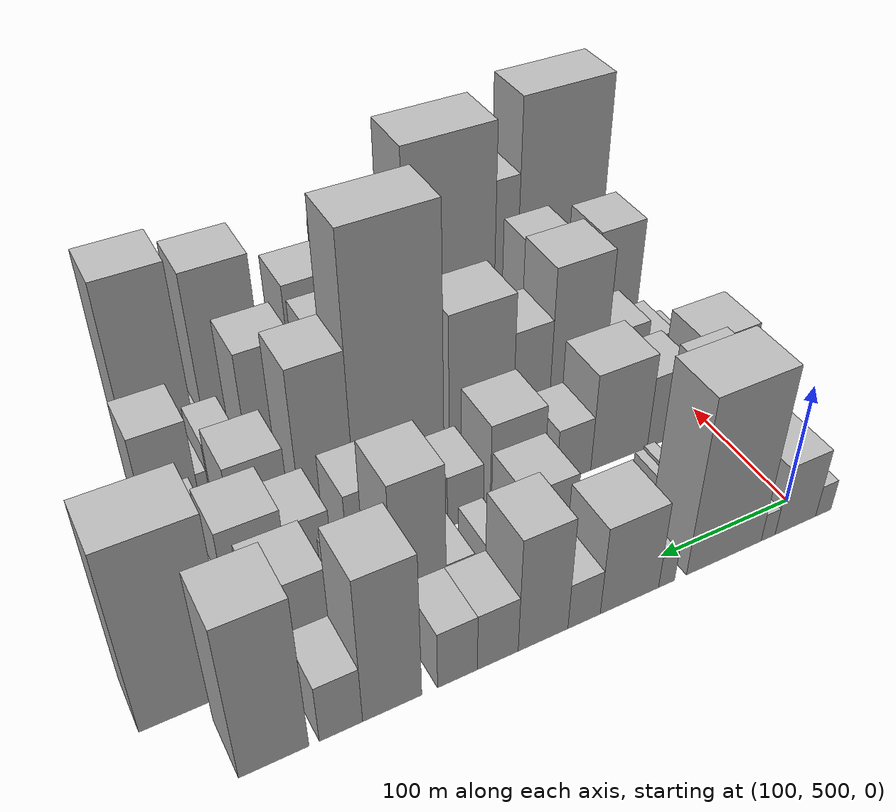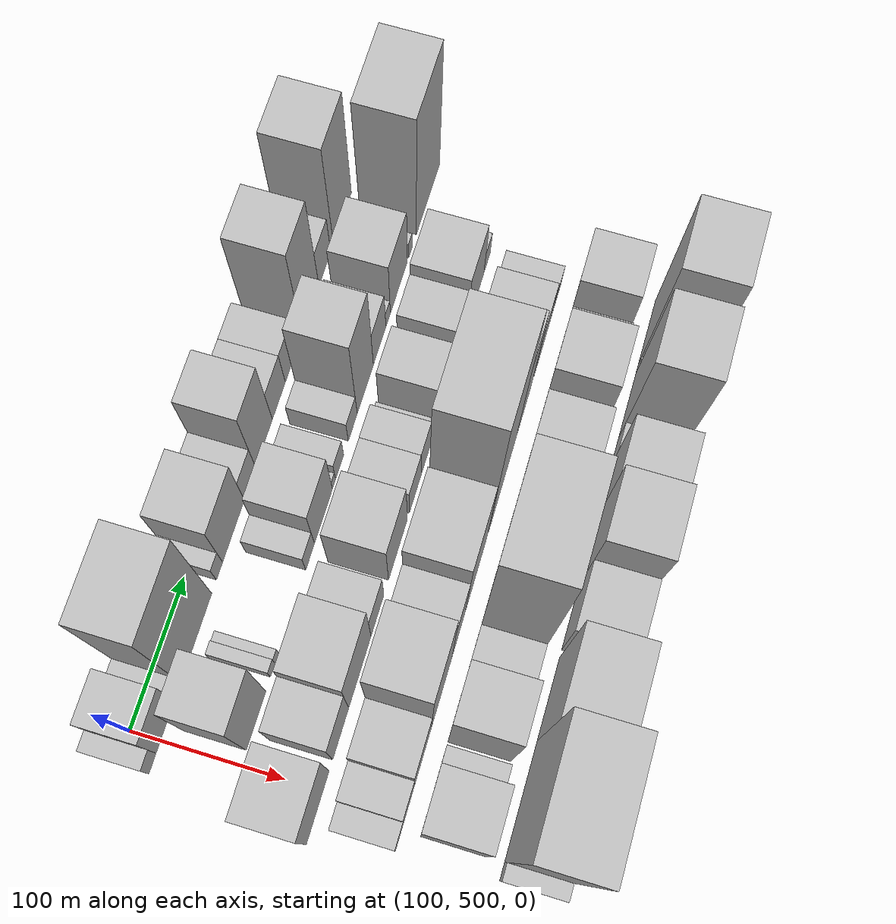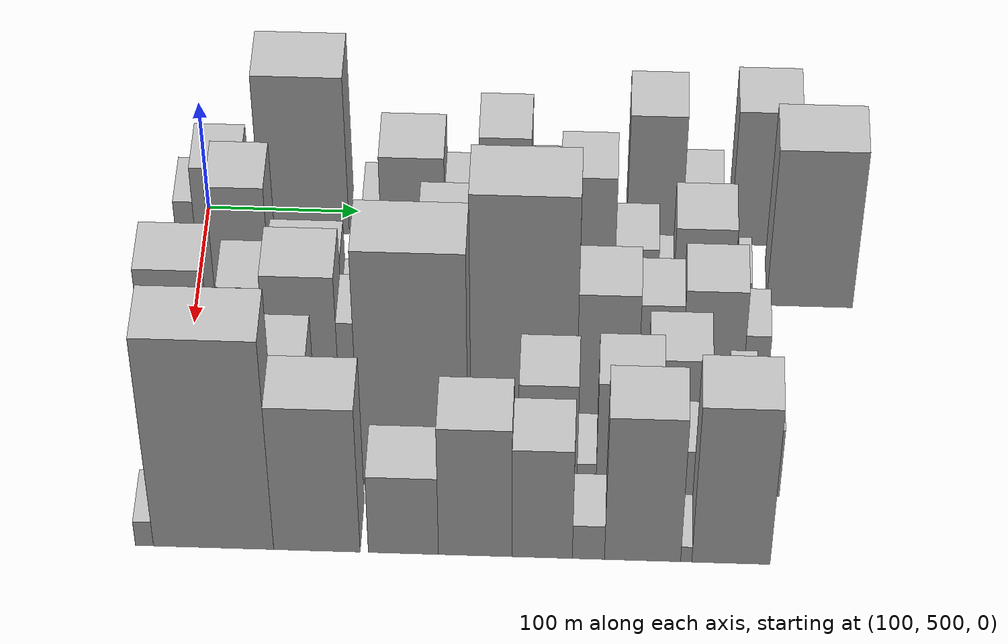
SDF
<sdf version="1.6">
 <world name="default">
  <model name="building_38">
   <static>1</static>
   <pose>100.0000 485.9886 0 0.000000 0.000000 0.000000</pose>
   <link name="link">
    <pose>0 0 13.50 0 0 0</pose>
    <collision name="collision"><geometry><box><size>40.0000 12.8164 27.0000</size></box></geometry></collision>
    <visual name="visual">
     <cast_shadows>0</cast_shadows>
     <geometry><box><size>40.0000 12.8164 27.0000</size></box></geometry>
     <material>
      <script>
       <uri>model://HANNAS_wall/materials/scripts</uri>
       <uri>model://HANNAS_wall/materials/textures</uri>
       <name>vrc/HANNAS_wall</name>
      </script>
     </material>
    </visual>
   </link>
  </model>
  <model name="building_39">
   <static>1</static>
   <pose>100.0000 509.0703 0 0.000000 0.000000 0.000000</pose>
   <link name="link">
    <pose>0 0 30.00 0 0 0</pose>
    <collision name="collision"><geometry><box><size>40.0000 33.3469 60.0000</size></box></geometry></collision>
    <visual name="visual">
     <cast_shadows>0</cast_shadows>
     <geometry><box><size>40.0000 33.3469 60.0000</size></box></geometry>
     <material>
      <script>
       <uri>model://HANNAS_wall/materials/scripts</uri>
       <uri>model://HANNAS_wall/materials/textures</uri>
       <name>vrc/HANNAS_wall</name>
      </script>
     </material>
    </visual>
   </link>
  </model>
  <model name="building_40">
   <static>1</static>
   <pose>100.0000 531.3404 0 0.000000 0.000000 0.000000</pose>
   <link name="link">
    <pose>0 0 12.00 0 0 0</pose>
    <collision name="collision"><geometry><box><size>40.0000 11.1934 24.0000</size></box></geometry></collision>
    <visual name="visual">
     <cast_shadows>0</cast_shadows>
     <geometry><box><size>40.0000 11.1934 24.0000</size></box></geometry>
     <material>
      <script>
       <uri>model://HANNAS_wall/materials/scripts</uri>
       <uri>model://HANNAS_wall/materials/textures</uri>
       <name>vrc/HANNAS_wall</name>
      </script>
     </material>
    </visual>
   </link>
  </model>
  <model name="building_41">
   <static>1</static>
   <pose>100.0000 566.0757 0 0.000000 0.000000 0.000000</pose>
   <link name="link">
    <pose>0 0 73.50 0 0 0</pose>
    <collision name="collision"><geometry><box><size>40.0000 58.2772 147.0000</size></box></geometry></collision>
    <visual name="visual">
     <cast_shadows>0</cast_shadows>
     <geometry><box><size>40.0000 58.2772 147.0000</size></box></geometry>
     <material>
      <script>
       <uri>model://HANNAS_wall/materials/scripts</uri>
       <uri>model://HANNAS_wall/materials/textures</uri>
       <name>vrc/HANNAS_wall</name>
      </script>
     </material>
    </visual>
   </link>
  </model>
  <model name="building_42">
   <static>1</static>
   <pose>100.0000 610.1692 0 0.000000 0.000000 0.000000</pose>
   <link name="link">
    <pose>0 0 13.50 0 0 0</pose>
    <collision name="collision"><geometry><box><size>40.0000 11.9098 27.0000</size></box></geometry></collision>
    <visual name="visual">
     <cast_shadows>0</cast_shadows>
     <geometry><box><size>40.0000 11.9098 27.0000</size></box></geometry>
     <material>
      <script>
       <uri>model://HANNAS_wall/materials/scripts</uri>
       <uri>model://HANNAS_wall/materials/textures</uri>
       <name>vrc/HANNAS_wall</name>
      </script>
     </material>
    </visual>
   </link>
  </model>
  <model name="building_43">
   <static>1</static>
   <pose>100.0000 637.3659 0 0.000000 0.000000 0.000000</pose>
   <link name="link">
    <pose>0 0 37.50 0 0 0</pose>
    <collision name="collision"><geometry><box><size>40.0000 42.4835 75.0000</size></box></geometry></collision>
    <visual name="visual">
     <cast_shadows>0</cast_shadows>
     <geometry><box><size>40.0000 42.4835 75.0000</size></box></geometry>
     <material>
      <script>
       <uri>model://HANNAS_wall/materials/scripts</uri>
       <uri>model://HANNAS_wall/materials/textures</uri>
       <name>vrc/HANNAS_wall</name>
      </script>
     </material>
    </visual>
   </link>
  </model>
  <model name="building_44">
   <static>1</static>
   <pose>100.0000 669.9970 0 0.000000 0.000000 0.000000</pose>
   <link name="link">
    <pose>0 0 19.50 0 0 0</pose>
    <collision name="collision"><geometry><box><size>40.0000 22.7788 39.0000</size></box></geometry></collision>
    <visual name="visual">
     <cast_shadows>0</cast_shadows>
     <geometry><box><size>40.0000 22.7788 39.0000</size></box></geometry>
     <material>
      <script>
       <uri>model://HANNAS_wall/materials/scripts</uri>
       <uri>model://HANNAS_wall/materials/textures</uri>
       <name>vrc/HANNAS_wall</name>
      </script>
     </material>
    </visual>
   </link>
  </model>
  <model name="building_45">
   <static>1</static>
   <pose>100.0000 698.4218 0 0.000000 0.000000 0.000000</pose>
   <link name="link">
    <pose>0 0 48.00 0 0 0</pose>
    <collision name="collision"><geometry><box><size>40.0000 34.0707 96.0000</size></box></geometry></collision>
    <visual name="visual">
     <cast_shadows>0</cast_shadows>
     <geometry><box><size>40.0000 34.0707 96.0000</size></box></geometry>
     <material>
      <script>
       <uri>model://HANNAS_wall/materials/scripts</uri>
       <uri>model://HANNAS_wall/materials/textures</uri>
       <name>vrc/HANNAS_wall</name>
      </script>
     </material>
    </visual>
   </link>
  </model>
  <model name="building_46">
   <static>1</static>
   <pose>100.0000 729.0111 0 0.000000 0.000000 0.000000</pose>
   <link name="link">
    <pose>0 0 24.00 0 0 0</pose>
    <collision name="collision"><geometry><box><size>40.0000 27.1078 48.0000</size></box></geometry></collision>
    <visual name="visual">
     <cast_shadows>0</cast_shadows>
     <geometry><box><size>40.0000 27.1078 48.0000</size></box></geometry>
     <material>
      <script>
       <uri>model://HANNAS_wall/materials/scripts</uri>
       <uri>model://HANNAS_wall/materials/textures</uri>
       <name>vrc/HANNAS_wall</name>
      </script>
     </material>
    </visual>
   </link>
  </model>
  <model name="building_47">
   <static>1</static>
   <pose>100.0000 755.4029 0 0.000000 0.000000 0.000000</pose>
   <link name="link">
    <pose>0 0 24.00 0 0 0</pose>
    <collision name="collision"><geometry><box><size>40.0000 25.6758 48.0000</size></box></geometry></collision>
    <visual name="visual">
     <cast_shadows>0</cast_shadows>
     <geometry><box><size>40.0000 25.6758 48.0000</size></box></geometry>
     <material>
      <script>
       <uri>model://HANNAS_wall/materials/scripts</uri>
       <uri>model://HANNAS_wall/materials/textures</uri>
       <name>vrc/HANNAS_wall</name>
      </script>
     </material>
    </visual>
   </link>
  </model>
  <model name="building_48">
   <static>1</static>
   <pose>100.0000 796.5270 0 0.000000 0.000000 0.000000</pose>
   <link name="link">
    <pose>0 0 60.00 0 0 0</pose>
    <collision name="collision"><geometry><box><size>40.0000 36.5725 120.0000</size></box></geometry></collision>
    <visual name="visual">
     <cast_shadows>0</cast_shadows>
     <geometry><box><size>40.0000 36.5725 120.0000</size></box></geometry>
     <material>
      <script>
       <uri>model://HANNAS_wall/materials/scripts</uri>
       <uri>model://HANNAS_wall/materials/textures</uri>
       <name>vrc/HANNAS_wall</name>
      </script>
     </material>
    </visual>
   </link>
  </model>
  <model name="building_49">
   <static>1</static>
   <pose>100.0000 827.8060 0 0.000000 0.000000 0.000000</pose>
   <link name="link">
    <pose>0 0 24.00 0 0 0</pose>
    <collision name="collision"><geometry><box><size>40.0000 25.9855 48.0000</size></box></geometry></collision>
    <visual name="visual">
     <cast_shadows>0</cast_shadows>
     <geometry><box><size>40.0000 25.9855 48.0000</size></box></geometry>
     <material>
      <script>
       <uri>model://HANNAS_wall/materials/scripts</uri>
       <uri>model://HANNAS_wall/materials/textures</uri>
       <name>vrc/HANNAS_wall</name>
      </script>
     </material>
    </visual>
   </link>
  </model>
  <model name="building_50">
   <static>1</static>
   <pose>100.0000 867.0473 0 0.000000 0.000000 0.000000</pose>
   <link name="link">
    <pose>0 0 63.00 0 0 0</pose>
    <collision name="collision"><geometry><box><size>40.0000 40.4972 126.0000</size></box></geometry></collision>
    <visual name="visual">
     <cast_shadows>0</cast_shadows>
     <geometry><box><size>40.0000 40.4972 126.0000</size></box></geometry>
     <material>
      <script>
       <uri>model://HANNAS_wall/materials/scripts</uri>
       <uri>model://HANNAS_wall/materials/textures</uri>
       <name>vrc/HANNAS_wall</name>
      </script>
     </material>
    </visual>
   </link>
  </model>
  <model name="building_83">
   <static>1</static>
   <pose>152.0000 528.4783 0 0.000000 0.000000 0.000000</pose>
   <link name="link">
    <pose>0 0 49.50 0 0 0</pose>
    <collision name="collision"><geometry><box><size>40.0000 37.2835 99.0000</size></box></geometry></collision>
    <visual name="visual">
     <cast_shadows>0</cast_shadows>
     <geometry><box><size>40.0000 37.2835 99.0000</size></box></geometry>
     <material>
      <script>
       <uri>model://HANNAS_wall/materials/scripts</uri>
       <uri>model://HANNAS_wall/materials/textures</uri>
       <name>vrc/HANNAS_wall</name>
      </script>
     </material>
    </visual>
   </link>
  </model>
  <model name="building_84">
   <static>1</static>
   <pose>152.0000 560.4969 0 0.000000 0.000000 0.000000</pose>
   <link name="link">
    <pose>0 0 9.00 0 0 0</pose>
    <collision name="collision"><geometry><box><size>40.0000 8.7536 18.0000</size></box></geometry></collision>
    <visual name="visual">
     <cast_shadows>0</cast_shadows>
     <geometry><box><size>40.0000 8.7536 18.0000</size></box></geometry>
     <material>
      <script>
       <uri>model://HANNAS_wall/materials/scripts</uri>
       <uri>model://HANNAS_wall/materials/textures</uri>
       <name>vrc/HANNAS_wall</name>
      </script>
     </material>
    </visual>
   </link>
  </model>
  <model name="building_85">
   <static>1</static>
   <pose>152.0000 568.3085 0 0.000000 0.000000 0.000000</pose>
   <link name="link">
    <pose>0 0 7.50 0 0 0</pose>
    <collision name="collision"><geometry><box><size>40.0000 6.8694 15.0000</size></box></geometry></collision>
    <visual name="visual">
     <cast_shadows>0</cast_shadows>
     <geometry><box><size>40.0000 6.8694 15.0000</size></box></geometry>
     <material>
      <script>
       <uri>model://HANNAS_wall/materials/scripts</uri>
       <uri>model://HANNAS_wall/materials/textures</uri>
       <name>vrc/HANNAS_wall</name>
      </script>
     </material>
    </visual>
   </link>
  </model>
  <model name="building_86">
   <static>1</static>
   <pose>152.0000 635.3804 0 0.000000 0.000000 0.000000</pose>
   <link name="link">
    <pose>0 0 15.00 0 0 0</pose>
    <collision name="collision"><geometry><box><size>40.0000 17.7581 30.0000</size></box></geometry></collision>
    <visual name="visual">
     <cast_shadows>0</cast_shadows>
     <geometry><box><size>40.0000 17.7581 30.0000</size></box></geometry>
     <material>
      <script>
       <uri>model://HANNAS_wall/materials/scripts</uri>
       <uri>model://HANNAS_wall/materials/textures</uri>
       <name>vrc/HANNAS_wall</name>
      </script>
     </material>
    </visual>
   </link>
  </model>
  <model name="building_87">
   <static>1</static>
   <pose>152.0000 663.0353 0 0.000000 0.000000 0.000000</pose>
   <link name="link">
    <pose>0 0 33.00 0 0 0</pose>
    <collision name="collision"><geometry><box><size>40.0000 37.5518 66.0000</size></box></geometry></collision>
    <visual name="visual">
     <cast_shadows>0</cast_shadows>
     <geometry><box><size>40.0000 37.5518 66.0000</size></box></geometry>
     <material>
      <script>
       <uri>model://HANNAS_wall/materials/scripts</uri>
       <uri>model://HANNAS_wall/materials/textures</uri>
       <name>vrc/HANNAS_wall</name>
      </script>
     </material>
    </visual>
   </link>
  </model>
  <model name="building_88">
   <static>1</static>
   <pose>152.0000 685.1945 0 0.000000 0.000000 0.000000</pose>
   <link name="link">
    <pose>0 0 7.50 0 0 0</pose>
    <collision name="collision"><geometry><box><size>40.0000 6.7666 15.0000</size></box></geometry></collision>
    <visual name="visual">
     <cast_shadows>0</cast_shadows>
     <geometry><box><size>40.0000 6.7666 15.0000</size></box></geometry>
     <material>
      <script>
       <uri>model://HANNAS_wall/materials/scripts</uri>
       <uri>model://HANNAS_wall/materials/textures</uri>
       <name>vrc/HANNAS_wall</name>
      </script>
     </material>
    </visual>
   </link>
  </model>
  <model name="building_89">
   <static>1</static>
   <pose>152.0000 697.1945 0 0.000000 0.000000 0.000000</pose>
   <link name="link">
    <pose>0 0 15.00 0 0 0</pose>
    <collision name="collision"><geometry><box><size>40.0000 17.2334 30.0000</size></box></geometry></collision>
    <visual name="visual">
     <cast_shadows>0</cast_shadows>
     <geometry><box><size>40.0000 17.2334 30.0000</size></box></geometry>
     <material>
      <script>
       <uri>model://HANNAS_wall/materials/scripts</uri>
       <uri>model://HANNAS_wall/materials/textures</uri>
       <name>vrc/HANNAS_wall</name>
      </script>
     </material>
    </visual>
   </link>
  </model>
  <model name="building_90">
   <static>1</static>
   <pose>152.0000 725.5152 0 0.000000 0.000000 0.000000</pose>
   <link name="link">
    <pose>0 0 16.50 0 0 0</pose>
    <collision name="collision"><geometry><box><size>40.0000 19.4080 33.0000</size></box></geometry></collision>
    <visual name="visual">
     <cast_shadows>0</cast_shadows>
     <geometry><box><size>40.0000 19.4080 33.0000</size></box></geometry>
     <material>
      <script>
       <uri>model://HANNAS_wall/materials/scripts</uri>
       <uri>model://HANNAS_wall/materials/textures</uri>
       <name>vrc/HANNAS_wall</name>
      </script>
     </material>
    </visual>
   </link>
  </model>
  <model name="building_91">
   <static>1</static>
   <pose>152.0000 753.0220 0 0.000000 0.000000 0.000000</pose>
   <link name="link">
    <pose>0 0 58.50 0 0 0</pose>
    <collision name="collision"><geometry><box><size>40.0000 35.6057 117.0000</size></box></geometry></collision>
    <visual name="visual">
     <cast_shadows>0</cast_shadows>
     <geometry><box><size>40.0000 35.6057 117.0000</size></box></geometry>
     <material>
      <script>
       <uri>model://HANNAS_wall/materials/scripts</uri>
       <uri>model://HANNAS_wall/materials/textures</uri>
       <name>vrc/HANNAS_wall</name>
      </script>
     </material>
    </visual>
   </link>
  </model>
  <model name="building_92">
   <static>1</static>
   <pose>152.0000 784.8673 0 0.000000 0.000000 0.000000</pose>
   <link name="link">
    <pose>0 0 25.50 0 0 0</pose>
    <collision name="collision"><geometry><box><size>40.0000 28.0848 51.0000</size></box></geometry></collision>
    <visual name="visual">
     <cast_shadows>0</cast_shadows>
     <geometry><box><size>40.0000 28.0848 51.0000</size></box></geometry>
     <material>
      <script>
       <uri>model://HANNAS_wall/materials/scripts</uri>
       <uri>model://HANNAS_wall/materials/textures</uri>
       <name>vrc/HANNAS_wall</name>
      </script>
     </material>
    </visual>
   </link>
  </model>
  <model name="building_93">
   <static>1</static>
   <pose>152.0000 804.0191 0 0.000000 0.000000 0.000000</pose>
   <link name="link">
    <pose>0 0 10.50 0 0 0</pose>
    <collision name="collision"><geometry><box><size>40.0000 10.2188 21.0000</size></box></geometry></collision>
    <visual name="visual">
     <cast_shadows>0</cast_shadows>
     <geometry><box><size>40.0000 10.2188 21.0000</size></box></geometry>
     <material>
      <script>
       <uri>model://HANNAS_wall/materials/scripts</uri>
       <uri>model://HANNAS_wall/materials/textures</uri>
       <name>vrc/HANNAS_wall</name>
      </script>
     </material>
    </visual>
   </link>
  </model>
  <model name="building_94">
   <static>1</static>
   <pose>152.0000 828.7419 0 0.000000 0.000000 0.000000</pose>
   <link name="link">
    <pose>0 0 36.00 0 0 0</pose>
    <collision name="collision"><geometry><box><size>40.0000 39.2267 72.0000</size></box></geometry></collision>
    <visual name="visual">
     <cast_shadows>0</cast_shadows>
     <geometry><box><size>40.0000 39.2267 72.0000</size></box></geometry>
     <material>
      <script>
       <uri>model://HANNAS_wall/materials/scripts</uri>
       <uri>model://HANNAS_wall/materials/textures</uri>
       <name>vrc/HANNAS_wall</name>
      </script>
     </material>
    </visual>
   </link>
  </model>
  <model name="building_95">
   <static>1</static>
   <pose>152.0000 855.6565 0 0.000000 0.000000 0.000000</pose>
   <link name="link">
    <pose>0 0 10.50 0 0 0</pose>
    <collision name="collision"><geometry><box><size>40.0000 8.6025 21.0000</size></box></geometry></collision>
    <visual name="visual">
     <cast_shadows>0</cast_shadows>
     <geometry><box><size>40.0000 8.6025 21.0000</size></box></geometry>
     <material>
      <script>
       <uri>model://HANNAS_wall/materials/scripts</uri>
       <uri>model://HANNAS_wall/materials/textures</uri>
       <name>vrc/HANNAS_wall</name>
      </script>
     </material>
    </visual>
   </link>
  </model>
  <model name="building_96">
   <static>1</static>
   <pose>152.0000 897.8614 0 0.000000 0.000000 0.000000</pose>
   <link name="link">
    <pose>0 0 73.50 0 0 0</pose>
    <collision name="collision"><geometry><box><size>40.0000 55.8073 147.0000</size></box></geometry></collision>
    <visual name="visual">
     <cast_shadows>0</cast_shadows>
     <geometry><box><size>40.0000 55.8073 147.0000</size></box></geometry>
     <material>
      <script>
       <uri>model://HANNAS_wall/materials/scripts</uri>
       <uri>model://HANNAS_wall/materials/textures</uri>
       <name>vrc/HANNAS_wall</name>
      </script>
     </material>
    </visual>
   </link>
  </model>
  <model name="building_133">
   <static>1</static>
   <pose>204.0000 490.2383 0 0.000000 0.000000 0.000000</pose>
   <link name="link">
    <pose>0 0 39.00 0 0 0</pose>
    <collision name="collision"><geometry><box><size>40.0000 44.5377 78.0000</size></box></geometry></collision>
    <visual name="visual">
     <cast_shadows>0</cast_shadows>
     <geometry><box><size>40.0000 44.5377 78.0000</size></box></geometry>
     <material>
      <script>
       <uri>model://HANNAS_wall/materials/scripts</uri>
       <uri>model://HANNAS_wall/materials/textures</uri>
       <name>vrc/HANNAS_wall</name>
      </script>
     </material>
    </visual>
   </link>
  </model>
  <model name="building_134">
   <static>1</static>
   <pose>204.0000 535.7047 0 0.000000 0.000000 0.000000</pose>
   <link name="link">
    <pose>0 0 31.50 0 0 0</pose>
    <collision name="collision"><geometry><box><size>40.0000 32.3950 63.0000</size></box></geometry></collision>
    <visual name="visual">
     <cast_shadows>0</cast_shadows>
     <geometry><box><size>40.0000 32.3950 63.0000</size></box></geometry>
     <material>
      <script>
       <uri>model://HANNAS_wall/materials/scripts</uri>
       <uri>model://HANNAS_wall/materials/textures</uri>
       <name>vrc/HANNAS_wall</name>
      </script>
     </material>
    </visual>
   </link>
  </model>
  <model name="building_135">
   <static>1</static>
   <pose>204.0000 574.9621 0 0.000000 0.000000 0.000000</pose>
   <link name="link">
    <pose>0 0 42.00 0 0 0</pose>
    <collision name="collision"><geometry><box><size>40.0000 46.1198 84.0000</size></box></geometry></collision>
    <visual name="visual">
     <cast_shadows>0</cast_shadows>
     <geometry><box><size>40.0000 46.1198 84.0000</size></box></geometry>
     <material>
      <script>
       <uri>model://HANNAS_wall/materials/scripts</uri>
       <uri>model://HANNAS_wall/materials/textures</uri>
       <name>vrc/HANNAS_wall</name>
      </script>
     </material>
    </visual>
   </link>
  </model>
  <model name="building_136">
   <static>1</static>
   <pose>204.0000 611.6609 0 0.000000 0.000000 0.000000</pose>
   <link name="link">
    <pose>0 0 24.00 0 0 0</pose>
    <collision name="collision"><geometry><box><size>40.0000 27.2777 48.0000</size></box></geometry></collision>
    <visual name="visual">
     <cast_shadows>0</cast_shadows>
     <geometry><box><size>40.0000 27.2777 48.0000</size></box></geometry>
     <material>
      <script>
       <uri>model://HANNAS_wall/materials/scripts</uri>
       <uri>model://HANNAS_wall/materials/textures</uri>
       <name>vrc/HANNAS_wall</name>
      </script>
     </material>
    </visual>
   </link>
  </model>
  <model name="building_137">
   <static>1</static>
   <pose>204.0000 655.5461 0 0.000000 0.000000 0.000000</pose>
   <link name="link">
    <pose>0 0 37.50 0 0 0</pose>
    <collision name="collision"><geometry><box><size>40.0000 40.4929 75.0000</size></box></geometry></collision>
    <visual name="visual">
     <cast_shadows>0</cast_shadows>
     <geometry><box><size>40.0000 40.4929 75.0000</size></box></geometry>
     <material>
      <script>
       <uri>model://HANNAS_wall/materials/scripts</uri>
       <uri>model://HANNAS_wall/materials/textures</uri>
       <name>vrc/HANNAS_wall</name>
      </script>
     </material>
    </visual>
   </link>
  </model>
  <model name="building_138">
   <static>1</static>
   <pose>204.0000 693.9142 0 0.000000 0.000000 0.000000</pose>
   <link name="link">
    <pose>0 0 22.50 0 0 0</pose>
    <collision name="collision"><geometry><box><size>40.0000 26.2432 45.0000</size></box></geometry></collision>
    <visual name="visual">
     <cast_shadows>0</cast_shadows>
     <geometry><box><size>40.0000 26.2432 45.0000</size></box></geometry>
     <material>
      <script>
       <uri>model://HANNAS_wall/materials/scripts</uri>
       <uri>model://HANNAS_wall/materials/textures</uri>
       <name>vrc/HANNAS_wall</name>
      </script>
     </material>
    </visual>
   </link>
  </model>
  <model name="building_139">
   <static>1</static>
   <pose>204.0000 718.3204 0 0.000000 0.000000 0.000000</pose>
   <link name="link">
    <pose>0 0 22.50 0 0 0</pose>
    <collision name="collision"><geometry><box><size>40.0000 22.5691 45.0000</size></box></geometry></collision>
    <visual name="visual">
     <cast_shadows>0</cast_shadows>
     <geometry><box><size>40.0000 22.5691 45.0000</size></box></geometry>
     <material>
      <script>
       <uri>model://HANNAS_wall/materials/scripts</uri>
       <uri>model://HANNAS_wall/materials/textures</uri>
       <name>vrc/HANNAS_wall</name>
      </script>
     </material>
    </visual>
   </link>
  </model>
  <model name="building_140">
   <static>1</static>
   <pose>204.0000 734.7813 0 0.000000 0.000000 0.000000</pose>
   <link name="link">
    <pose>0 0 10.50 0 0 0</pose>
    <collision name="collision"><geometry><box><size>40.0000 10.3527 21.0000</size></box></geometry></collision>
    <visual name="visual">
     <cast_shadows>0</cast_shadows>
     <geometry><box><size>40.0000 10.3527 21.0000</size></box></geometry>
     <material>
      <script>
       <uri>model://HANNAS_wall/materials/scripts</uri>
       <uri>model://HANNAS_wall/materials/textures</uri>
       <name>vrc/HANNAS_wall</name>
      </script>
     </material>
    </visual>
   </link>
  </model>
  <model name="building_141">
   <static>1</static>
   <pose>204.0000 760.2589 0 0.000000 0.000000 0.000000</pose>
   <link name="link">
    <pose>0 0 31.50 0 0 0</pose>
    <collision name="collision"><geometry><box><size>40.0000 32.6025 63.0000</size></box></geometry></collision>
    <visual name="visual">
     <cast_shadows>0</cast_shadows>
     <geometry><box><size>40.0000 32.6025 63.0000</size></box></geometry>
     <material>
      <script>
       <uri>model://HANNAS_wall/materials/scripts</uri>
       <uri>model://HANNAS_wall/materials/textures</uri>
       <name>vrc/HANNAS_wall</name>
      </script>
     </material>
    </visual>
   </link>
  </model>
  <model name="building_142">
   <static>1</static>
   <pose>204.0000 801.0625 0 0.000000 0.000000 0.000000</pose>
   <link name="link">
    <pose>0 0 28.50 0 0 0</pose>
    <collision name="collision"><geometry><box><size>40.0000 29.0048 57.0000</size></box></geometry></collision>
    <visual name="visual">
     <cast_shadows>0</cast_shadows>
     <geometry><box><size>40.0000 29.0048 57.0000</size></box></geometry>
     <material>
      <script>
       <uri>model://HANNAS_wall/materials/scripts</uri>
       <uri>model://HANNAS_wall/materials/textures</uri>
       <name>vrc/HANNAS_wall</name>
      </script>
     </material>
    </visual>
   </link>
  </model>
  <model name="building_143">
   <static>1</static>
   <pose>204.0000 835.3494 0 0.000000 0.000000 0.000000</pose>
   <link name="link">
    <pose>0 0 36.00 0 0 0</pose>
    <collision name="collision"><geometry><box><size>40.0000 39.5691 72.0000</size></box></geometry></collision>
    <visual name="visual">
     <cast_shadows>0</cast_shadows>
     <geometry><box><size>40.0000 39.5691 72.0000</size></box></geometry>
     <material>
      <script>
       <uri>model://HANNAS_wall/materials/scripts</uri>
       <uri>model://HANNAS_wall/materials/textures</uri>
       <name>vrc/HANNAS_wall</name>
      </script>
     </material>
    </visual>
   </link>
  </model>
  <model name="building_144">
   <static>1</static>
   <pose>204.0000 863.1640 0 0.000000 0.000000 0.000000</pose>
   <link name="link">
    <pose>0 0 15.00 0 0 0</pose>
    <collision name="collision"><geometry><box><size>40.0000 16.0599 30.0000</size></box></geometry></collision>
    <visual name="visual">
     <cast_shadows>0</cast_shadows>
     <geometry><box><size>40.0000 16.0599 30.0000</size></box></geometry>
     <material>
      <script>
       <uri>model://HANNAS_wall/materials/scripts</uri>
       <uri>model://HANNAS_wall/materials/textures</uri>
       <name>vrc/HANNAS_wall</name>
      </script>
     </material>
    </visual>
   </link>
  </model>
  <model name="building_185">
   <static>1</static>
   <pose>256.0000 487.8728 0 0.000000 0.000000 0.000000</pose>
   <link name="link">
    <pose>0 0 15.00 0 0 0</pose>
    <collision name="collision"><geometry><box><size>40.0000 16.6893 30.0000</size></box></geometry></collision>
    <visual name="visual">
     <cast_shadows>0</cast_shadows>
     <geometry><box><size>40.0000 16.6893 30.0000</size></box></geometry>
     <material>
      <script>
       <uri>model://HANNAS_wall/materials/scripts</uri>
       <uri>model://HANNAS_wall/materials/textures</uri>
       <name>vrc/HANNAS_wall</name>
      </script>
     </material>
    </visual>
   </link>
  </model>
  <model name="building_186">
   <static>1</static>
   <pose>256.0000 507.9400 0 0.000000 0.000000 0.000000</pose>
   <link name="link">
    <pose>0 0 22.50 0 0 0</pose>
    <collision name="collision"><geometry><box><size>40.0000 23.4451 45.0000</size></box></geometry></collision>
    <visual name="visual">
     <cast_shadows>0</cast_shadows>
     <geometry><box><size>40.0000 23.4451 45.0000</size></box></geometry>
     <material>
      <script>
       <uri>model://HANNAS_wall/materials/scripts</uri>
       <uri>model://HANNAS_wall/materials/textures</uri>
       <name>vrc/HANNAS_wall</name>
      </script>
     </material>
    </visual>
   </link>
  </model>
  <model name="building_187">
   <static>1</static>
   <pose>256.0000 537.2613 0 0.000000 0.000000 0.000000</pose>
   <link name="link">
    <pose>0 0 31.50 0 0 0</pose>
    <collision name="collision"><geometry><box><size>40.0000 35.1974 63.0000</size></box></geometry></collision>
    <visual name="visual">
     <cast_shadows>0</cast_shadows>
     <geometry><box><size>40.0000 35.1974 63.0000</size></box></geometry>
     <material>
      <script>
       <uri>model://HANNAS_wall/materials/scripts</uri>
       <uri>model://HANNAS_wall/materials/textures</uri>
       <name>vrc/HANNAS_wall</name>
      </script>
     </material>
    </visual>
   </link>
  </model>
  <model name="building_188">
   <static>1</static>
   <pose>256.0000 577.3942 0 0.000000 0.000000 0.000000</pose>
   <link name="link">
    <pose>0 0 67.50 0 0 0</pose>
    <collision name="collision"><geometry><box><size>40.0000 45.0685 135.0000</size></box></geometry></collision>
    <visual name="visual">
     <cast_shadows>0</cast_shadows>
     <geometry><box><size>40.0000 45.0685 135.0000</size></box></geometry>
     <material>
      <script>
       <uri>model://HANNAS_wall/materials/scripts</uri>
       <uri>model://HANNAS_wall/materials/textures</uri>
       <name>vrc/HANNAS_wall</name>
      </script>
     </material>
    </visual>
   </link>
  </model>
  <model name="building_189">
   <static>1</static>
   <pose>256.0000 614.4289 0 0.000000 0.000000 0.000000</pose>
   <link name="link">
    <pose>0 0 46.50 0 0 0</pose>
    <collision name="collision"><geometry><box><size>40.0000 29.0008 93.0000</size></box></geometry></collision>
    <visual name="visual">
     <cast_shadows>0</cast_shadows>
     <geometry><box><size>40.0000 29.0008 93.0000</size></box></geometry>
     <material>
      <script>
       <uri>model://HANNAS_wall/materials/scripts</uri>
       <uri>model://HANNAS_wall/materials/textures</uri>
       <name>vrc/HANNAS_wall</name>
      </script>
     </material>
    </visual>
   </link>
  </model>
  <model name="building_190">
   <static>1</static>
   <pose>256.0000 653.5761 0 0.000000 0.000000 0.000000</pose>
   <link name="link">
    <pose>0 0 63.00 0 0 0</pose>
    <collision name="collision"><geometry><box><size>40.0000 49.2937 126.0000</size></box></geometry></collision>
    <visual name="visual">
     <cast_shadows>0</cast_shadows>
     <geometry><box><size>40.0000 49.2937 126.0000</size></box></geometry>
     <material>
      <script>
       <uri>model://HANNAS_wall/materials/scripts</uri>
       <uri>model://HANNAS_wall/materials/textures</uri>
       <name>vrc/HANNAS_wall</name>
      </script>
     </material>
    </visual>
   </link>
  </model>
  <model name="building_191">
   <static>1</static>
   <pose>256.0000 715.4002 0 0.000000 0.000000 0.000000</pose>
   <link name="link">
    <pose>0 0 106.50 0 0 0</pose>
    <collision name="collision"><geometry><box><size>40.0000 66.3545 213.0000</size></box></geometry></collision>
    <visual name="visual">
     <cast_shadows>0</cast_shadows>
     <geometry><box><size>40.0000 66.3545 213.0000</size></box></geometry>
     <material>
      <script>
       <uri>model://HANNAS_wall/materials/scripts</uri>
       <uri>model://HANNAS_wall/materials/textures</uri>
       <name>vrc/HANNAS_wall</name>
      </script>
     </material>
    </visual>
   </link>
  </model>
  <model name="building_192">
   <static>1</static>
   <pose>256.0000 767.5799 0 0.000000 0.000000 0.000000</pose>
   <link name="link">
    <pose>0 0 63.00 0 0 0</pose>
    <collision name="collision"><geometry><box><size>40.0000 38.0048 126.0000</size></box></geometry></collision>
    <visual name="visual">
     <cast_shadows>0</cast_shadows>
     <geometry><box><size>40.0000 38.0048 126.0000</size></box></geometry>
     <material>
      <script>
       <uri>model://HANNAS_wall/materials/scripts</uri>
       <uri>model://HANNAS_wall/materials/textures</uri>
       <name>vrc/HANNAS_wall</name>
      </script>
     </material>
    </visual>
   </link>
  </model>
  <model name="building_193">
   <static>1</static>
   <pose>256.0000 813.0000 0 0.000000 0.000000 0.000000</pose>
   <link name="link">
    <pose>0 0 33.00 0 0 0</pose>
    <collision name="collision"><geometry><box><size>40.0000 38.8354 66.0000</size></box></geometry></collision>
    <visual name="visual">
     <cast_shadows>0</cast_shadows>
     <geometry><box><size>40.0000 38.8354 66.0000</size></box></geometry>
     <material>
      <script>
       <uri>model://HANNAS_wall/materials/scripts</uri>
       <uri>model://HANNAS_wall/materials/textures</uri>
       <name>vrc/HANNAS_wall</name>
      </script>
     </material>
    </visual>
   </link>
  </model>
  <model name="building_194">
   <static>1</static>
   <pose>256.0000 836.7324 0 0.000000 0.000000 0.000000</pose>
   <link name="link">
    <pose>0 0 9.00 0 0 0</pose>
    <collision name="collision"><geometry><box><size>40.0000 8.6293 18.0000</size></box></geometry></collision>
    <visual name="visual">
     <cast_shadows>0</cast_shadows>
     <geometry><box><size>40.0000 8.6293 18.0000</size></box></geometry>
     <material>
      <script>
       <uri>model://HANNAS_wall/materials/scripts</uri>
       <uri>model://HANNAS_wall/materials/textures</uri>
       <name>vrc/HANNAS_wall</name>
      </script>
     </material>
    </visual>
   </link>
  </model>
  <model name="building_195">
   <static>1</static>
   <pose>256.0000 853.5252 0 0.000000 0.000000 0.000000</pose>
   <link name="link">
    <pose>0 0 15.00 0 0 0</pose>
    <collision name="collision"><geometry><box><size>40.0000 16.9563 30.0000</size></box></geometry></collision>
    <visual name="visual">
     <cast_shadows>0</cast_shadows>
     <geometry><box><size>40.0000 16.9563 30.0000</size></box></geometry>
     <material>
      <script>
       <uri>model://HANNAS_wall/materials/scripts</uri>
       <uri>model://HANNAS_wall/materials/textures</uri>
       <name>vrc/HANNAS_wall</name>
      </script>
     </material>
    </visual>
   </link>
  </model>
  <model name="building_235">
   <static>1</static>
   <pose>308.0000 510.7890 0 0.000000 0.000000 0.000000</pose>
   <link name="link">
    <pose>0 0 54.00 0 0 0</pose>
    <collision name="collision"><geometry><box><size>40.0000 37.7494 108.0000</size></box></geometry></collision>
    <visual name="visual">
     <cast_shadows>0</cast_shadows>
     <geometry><box><size>40.0000 37.7494 108.0000</size></box></geometry>
     <material>
      <script>
       <uri>model://HANNAS_wall/materials/scripts</uri>
       <uri>model://HANNAS_wall/materials/textures</uri>
       <name>vrc/HANNAS_wall</name>
      </script>
     </material>
    </visual>
   </link>
  </model>
  <model name="building_236">
   <static>1</static>
   <pose>308.0000 537.6875 0 0.000000 0.000000 0.000000</pose>
   <link name="link">
    <pose>0 0 15.00 0 0 0</pose>
    <collision name="collision"><geometry><box><size>40.0000 16.0476 30.0000</size></box></geometry></collision>
    <visual name="visual">
     <cast_shadows>0</cast_shadows>
     <geometry><box><size>40.0000 16.0476 30.0000</size></box></geometry>
     <material>
      <script>
       <uri>model://HANNAS_wall/materials/scripts</uri>
       <uri>model://HANNAS_wall/materials/textures</uri>
       <name>vrc/HANNAS_wall</name>
      </script>
     </material>
    </visual>
   </link>
  </model>
  <model name="building_237">
   <static>1</static>
   <pose>308.0000 567.7026 0 0.000000 0.000000 0.000000</pose>
   <link name="link">
    <pose>0 0 57.00 0 0 0</pose>
    <collision name="collision"><geometry><box><size>40.0000 35.9826 114.0000</size></box></geometry></collision>
    <visual name="visual">
     <cast_shadows>0</cast_shadows>
     <geometry><box><size>40.0000 35.9826 114.0000</size></box></geometry>
     <material>
      <script>
       <uri>model://HANNAS_wall/materials/scripts</uri>
       <uri>model://HANNAS_wall/materials/textures</uri>
       <name>vrc/HANNAS_wall</name>
      </script>
     </material>
    </visual>
   </link>
  </model>
  <model name="building_238">
   <static>1</static>
   <pose>308.0000 600.7025 0 0.000000 0.000000 0.000000</pose>
   <link name="link">
    <pose>0 0 27.00 0 0 0</pose>
    <collision name="collision"><geometry><box><size>40.0000 30.0172 54.0000</size></box></geometry></collision>
    <visual name="visual">
     <cast_shadows>0</cast_shadows>
     <geometry><box><size>40.0000 30.0172 54.0000</size></box></geometry>
     <material>
      <script>
       <uri>model://HANNAS_wall/materials/scripts</uri>
       <uri>model://HANNAS_wall/materials/textures</uri>
       <name>vrc/HANNAS_wall</name>
      </script>
     </material>
    </visual>
   </link>
  </model>
  <model name="building_239">
   <static>1</static>
   <pose>308.0000 649.3122 0 0.000000 0.000000 0.000000</pose>
   <link name="link">
    <pose>0 0 109.50 0 0 0</pose>
    <collision name="collision"><geometry><box><size>40.0000 67.2022 219.0000</size></box></geometry></collision>
    <visual name="visual">
     <cast_shadows>0</cast_shadows>
     <geometry><box><size>40.0000 67.2022 219.0000</size></box></geometry>
     <material>
      <script>
       <uri>model://HANNAS_wall/materials/scripts</uri>
       <uri>model://HANNAS_wall/materials/textures</uri>
       <name>vrc/HANNAS_wall</name>
      </script>
     </material>
    </visual>
   </link>
  </model>
  <model name="building_240">
   <static>1</static>
   <pose>308.0000 695.9622 0 0.000000 0.000000 0.000000</pose>
   <link name="link">
    <pose>0 0 22.50 0 0 0</pose>
    <collision name="collision"><geometry><box><size>40.0000 26.0978 45.0000</size></box></geometry></collision>
    <visual name="visual">
     <cast_shadows>0</cast_shadows>
     <geometry><box><size>40.0000 26.0978 45.0000</size></box></geometry>
     <material>
      <script>
       <uri>model://HANNAS_wall/materials/scripts</uri>
       <uri>model://HANNAS_wall/materials/textures</uri>
       <name>vrc/HANNAS_wall</name>
      </script>
     </material>
    </visual>
   </link>
  </model>
  <model name="building_241">
   <static>1</static>
   <pose>308.0000 732.0961 0 0.000000 0.000000 0.000000</pose>
   <link name="link">
    <pose>0 0 51.00 0 0 0</pose>
    <collision name="collision"><geometry><box><size>40.0000 36.1700 102.0000</size></box></geometry></collision>
    <visual name="visual">
     <cast_shadows>0</cast_shadows>
     <geometry><box><size>40.0000 36.1700 102.0000</size></box></geometry>
     <material>
      <script>
       <uri>model://HANNAS_wall/materials/scripts</uri>
       <uri>model://HANNAS_wall/materials/textures</uri>
       <name>vrc/HANNAS_wall</name>
      </script>
     </material>
    </visual>
   </link>
  </model>
  <model name="building_242">
   <static>1</static>
   <pose>308.0000 756.0918 0 0.000000 0.000000 0.000000</pose>
   <link name="link">
    <pose>0 0 13.50 0 0 0</pose>
    <collision name="collision"><geometry><box><size>40.0000 11.8213 27.0000</size></box></geometry></collision>
    <visual name="visual">
     <cast_shadows>0</cast_shadows>
     <geometry><box><size>40.0000 11.8213 27.0000</size></box></geometry>
     <material>
      <script>
       <uri>model://HANNAS_wall/materials/scripts</uri>
       <uri>model://HANNAS_wall/materials/textures</uri>
       <name>vrc/HANNAS_wall</name>
      </script>
     </material>
    </visual>
   </link>
  </model>
  <model name="building_243">
   <static>1</static>
   <pose>308.0000 781.7515 0 0.000000 0.000000 0.000000</pose>
   <link name="link">
    <pose>0 0 52.50 0 0 0</pose>
    <collision name="collision"><geometry><box><size>40.0000 39.4983 105.0000</size></box></geometry></collision>
    <visual name="visual">
     <cast_shadows>0</cast_shadows>
     <geometry><box><size>40.0000 39.4983 105.0000</size></box></geometry>
     <material>
      <script>
       <uri>model://HANNAS_wall/materials/scripts</uri>
       <uri>model://HANNAS_wall/materials/textures</uri>
       <name>vrc/HANNAS_wall</name>
      </script>
     </material>
    </visual>
   </link>
  </model>
  <model name="building_244">
   <static>1</static>
   <pose>308.0000 818.5686 0 0.000000 0.000000 0.000000</pose>
   <link name="link">
    <pose>0 0 21.00 0 0 0</pose>
    <collision name="collision"><geometry><box><size>40.0000 24.1359 42.0000</size></box></geometry></collision>
    <visual name="visual">
     <cast_shadows>0</cast_shadows>
     <geometry><box><size>40.0000 24.1359 42.0000</size></box></geometry>
     <material>
      <script>
       <uri>model://HANNAS_wall/materials/scripts</uri>
       <uri>model://HANNAS_wall/materials/textures</uri>
       <name>vrc/HANNAS_wall</name>
      </script>
     </material>
    </visual>
   </link>
  </model>
  <model name="building_245">
   <static>1</static>
   <pose>308.0000 834.3516 0 0.000000 0.000000 0.000000</pose>
   <link name="link">
    <pose>0 0 9.00 0 0 0</pose>
    <collision name="collision"><geometry><box><size>40.0000 7.4300 18.0000</size></box></geometry></collision>
    <visual name="visual">
     <cast_shadows>0</cast_shadows>
     <geometry><box><size>40.0000 7.4300 18.0000</size></box></geometry>
     <material>
      <script>
       <uri>model://HANNAS_wall/materials/scripts</uri>
       <uri>model://HANNAS_wall/materials/textures</uri>
       <name>vrc/HANNAS_wall</name>
      </script>
     </material>
    </visual>
   </link>
  </model>
  <model name="building_246">
   <static>1</static>
   <pose>308.0000 856.8795 0 0.000000 0.000000 0.000000</pose>
   <link name="link">
    <pose>0 0 33.00 0 0 0</pose>
    <collision name="collision"><geometry><box><size>40.0000 37.6259 66.0000</size></box></geometry></collision>
    <visual name="visual">
     <cast_shadows>0</cast_shadows>
     <geometry><box><size>40.0000 37.6259 66.0000</size></box></geometry>
     <material>
      <script>
       <uri>model://HANNAS_wall/materials/scripts</uri>
       <uri>model://HANNAS_wall/materials/textures</uri>
       <name>vrc/HANNAS_wall</name>
      </script>
     </material>
    </visual>
   </link>
  </model>
  <model name="building_279">
   <static>1</static>
   <pose>360.0000 486.6427 0 0.000000 0.000000 0.000000</pose>
   <link name="link">
    <pose>0 0 12.00 0 0 0</pose>
    <collision name="collision"><geometry><box><size>40.0000 11.0444 24.0000</size></box></geometry></collision>
    <visual name="visual">
     <cast_shadows>0</cast_shadows>
     <geometry><box><size>40.0000 11.0444 24.0000</size></box></geometry>
     <material>
      <script>
       <uri>model://HANNAS_wall/materials/scripts</uri>
       <uri>model://HANNAS_wall/materials/textures</uri>
       <name>vrc/HANNAS_wall</name>
      </script>
     </material>
    </visual>
   </link>
  </model>
  <model name="building_280">
   <static>1</static>
   <pose>360.0000 529.0645 0 0.000000 0.000000 0.000000</pose>
   <link name="link">
    <pose>0 0 99.00 0 0 0</pose>
    <collision name="collision"><geometry><box><size>40.0000 73.7992 198.0000</size></box></geometry></collision>
    <visual name="visual">
     <cast_shadows>0</cast_shadows>
     <geometry><box><size>40.0000 73.7992 198.0000</size></box></geometry>
     <material>
      <script>
       <uri>model://HANNAS_wall/materials/scripts</uri>
       <uri>model://HANNAS_wall/materials/textures</uri>
       <name>vrc/HANNAS_wall</name>
      </script>
     </material>
    </visual>
   </link>
  </model>
  <model name="building_281">
   <static>1</static>
   <pose>360.0000 592.4614 0 0.000000 0.000000 0.000000</pose>
   <link name="link">
    <pose>0 0 69.00 0 0 0</pose>
    <collision name="collision"><geometry><box><size>40.0000 52.9945 138.0000</size></box></geometry></collision>
    <visual name="visual">
     <cast_shadows>0</cast_shadows>
     <geometry><box><size>40.0000 52.9945 138.0000</size></box></geometry>
     <material>
      <script>
       <uri>model://HANNAS_wall/materials/scripts</uri>
       <uri>model://HANNAS_wall/materials/textures</uri>
       <name>vrc/HANNAS_wall</name>
      </script>
     </material>
    </visual>
   </link>
  </model>
  <model name="building_282">
   <static>1</static>
   <pose>360.0000 645.4327 0 0.000000 0.000000 0.000000</pose>
   <link name="link">
    <pose>0 0 37.50 0 0 0</pose>
    <collision name="collision"><geometry><box><size>40.0000 42.9482 75.0000</size></box></geometry></collision>
    <visual name="visual">
     <cast_shadows>0</cast_shadows>
     <geometry><box><size>40.0000 42.9482 75.0000</size></box></geometry>
     <material>
      <script>
       <uri>model://HANNAS_wall/materials/scripts</uri>
       <uri>model://HANNAS_wall/materials/textures</uri>
       <name>vrc/HANNAS_wall</name>
      </script>
     </material>
    </visual>
   </link>
  </model>
  <model name="building_283">
   <static>1</static>
   <pose>360.0000 689.3318 0 0.000000 0.000000 0.000000</pose>
   <link name="link">
    <pose>0 0 61.50 0 0 0</pose>
    <collision name="collision"><geometry><box><size>40.0000 44.8501 123.0000</size></box></geometry></collision>
    <visual name="visual">
     <cast_shadows>0</cast_shadows>
     <geometry><box><size>40.0000 44.8501 123.0000</size></box></geometry>
     <material>
      <script>
       <uri>model://HANNAS_wall/materials/scripts</uri>
       <uri>model://HANNAS_wall/materials/textures</uri>
       <name>vrc/HANNAS_wall</name>
      </script>
     </material>
    </visual>
   </link>
  </model>
  <model name="building_284">
   <static>1</static>
   <pose>360.0000 730.2241 0 0.000000 0.000000 0.000000</pose>
   <link name="link">
    <pose>0 0 52.50 0 0 0</pose>
    <collision name="collision"><geometry><box><size>40.0000 36.9344 105.0000</size></box></geometry></collision>
    <visual name="visual">
     <cast_shadows>0</cast_shadows>
     <geometry><box><size>40.0000 36.9344 105.0000</size></box></geometry>
     <material>
      <script>
       <uri>model://HANNAS_wall/materials/scripts</uri>
       <uri>model://HANNAS_wall/materials/textures</uri>
       <name>vrc/HANNAS_wall</name>
      </script>
     </material>
    </visual>
   </link>
  </model>
  <model name="building_285">
   <static>1</static>
   <pose>360.0000 758.5003 0 0.000000 0.000000 0.000000</pose>
   <link name="link">
    <pose>0 0 16.50 0 0 0</pose>
    <collision name="collision"><geometry><box><size>40.0000 19.6181 33.0000</size></box></geometry></collision>
    <visual name="visual">
     <cast_shadows>0</cast_shadows>
     <geometry><box><size>40.0000 19.6181 33.0000</size></box></geometry>
     <material>
      <script>
       <uri>model://HANNAS_wall/materials/scripts</uri>
       <uri>model://HANNAS_wall/materials/textures</uri>
       <name>vrc/HANNAS_wall</name>
      </script>
     </material>
    </visual>
   </link>
  </model>
  <model name="building_286">
   <static>1</static>
   <pose>360.0000 791.5544 0 0.000000 0.000000 0.000000</pose>
   <link name="link">
    <pose>0 0 69.00 0 0 0</pose>
    <collision name="collision"><geometry><box><size>40.0000 46.4899 138.0000</size></box></geometry></collision>
    <visual name="visual">
     <cast_shadows>0</cast_shadows>
     <geometry><box><size>40.0000 46.4899 138.0000</size></box></geometry>
     <material>
      <script>
       <uri>model://HANNAS_wall/materials/scripts</uri>
       <uri>model://HANNAS_wall/materials/textures</uri>
       <name>vrc/HANNAS_wall</name>
      </script>
     </material>
    </visual>
   </link>
  </model>
  <model name="building_287">
   <static>1</static>
   <pose>360.0000 818.2084 0 0.000000 0.000000 0.000000</pose>
   <link name="link">
    <pose>0 0 7.50 0 0 0</pose>
    <collision name="collision"><geometry><box><size>40.0000 6.8182 15.0000</size></box></geometry></collision>
    <visual name="visual">
     <cast_shadows>0</cast_shadows>
     <geometry><box><size>40.0000 6.8182 15.0000</size></box></geometry>
     <material>
      <script>
       <uri>model://HANNAS_wall/materials/scripts</uri>
       <uri>model://HANNAS_wall/materials/textures</uri>
       <name>vrc/HANNAS_wall</name>
      </script>
     </material>
    </visual>
   </link>
  </model>
  <model name="building_288">
   <static>1</static>
   <pose>360.0000 845.4366 0 0.000000 0.000000 0.000000</pose>
   <link name="link">
    <pose>0 0 75.00 0 0 0</pose>
    <collision name="collision"><geometry><box><size>40.0000 47.6383 150.0000</size></box></geometry></collision>
    <visual name="visual">
     <cast_shadows>0</cast_shadows>
     <geometry><box><size>40.0000 47.6383 150.0000</size></box></geometry>
     <material>
      <script>
       <uri>model://HANNAS_wall/materials/scripts</uri>
       <uri>model://HANNAS_wall/materials/textures</uri>
       <name>vrc/HANNAS_wall</name>
      </script>
     </material>
    </visual>
   </link>
  </model>
 </world>
</sdf>
